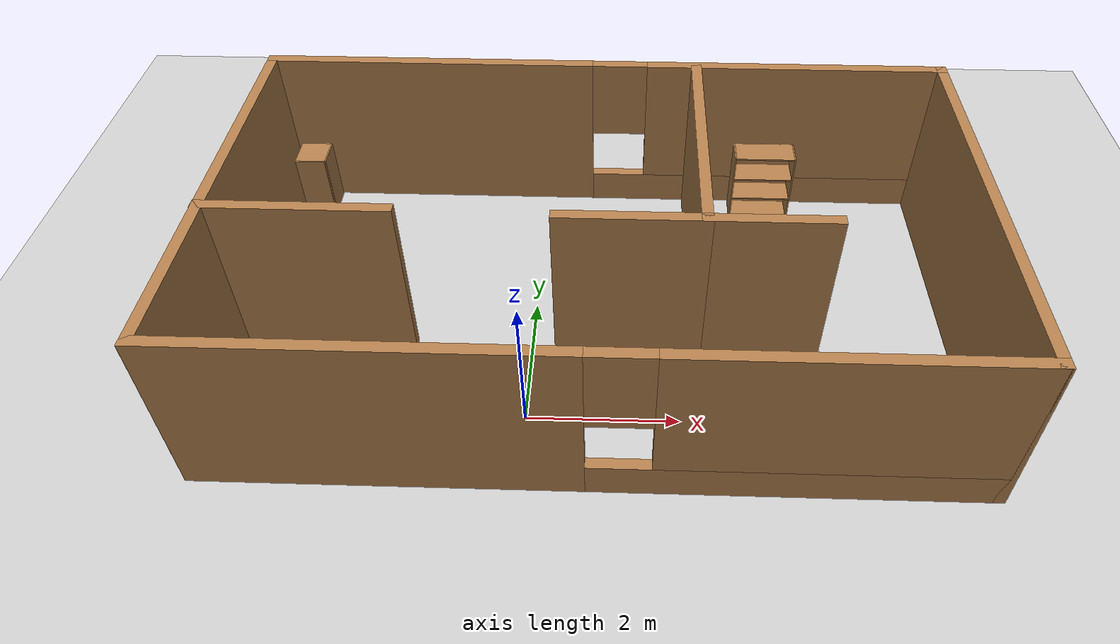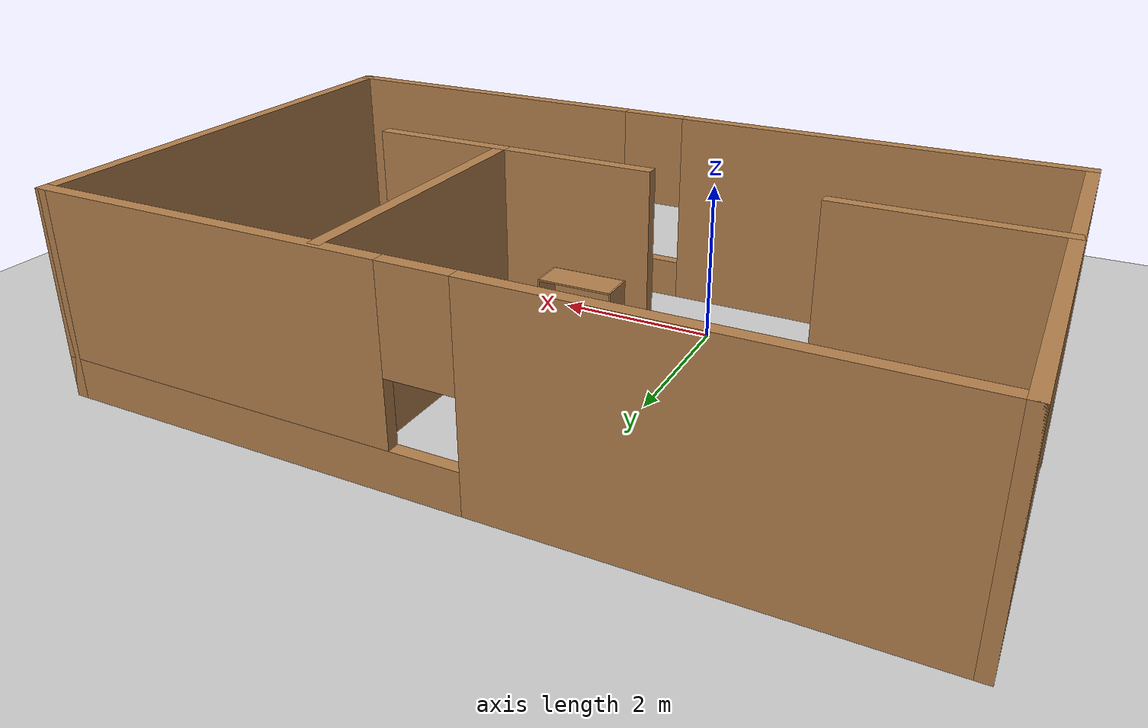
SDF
<sdf version="1.6">
 <world name="default">
  <light name="sun" type="directional">
   <pose>0 0 10 0 -0 0</pose>
   <diffuse>0.8 0.8 0.8 1</diffuse>
   <specular>0.2 0.2 0.2 1</specular>
   <attenuation>
    <range>1000</range>
    <constant>0.9</constant>
    <linear>0.01</linear>
    <quadratic>0.001</quadratic>
   </attenuation>
   <direction>-0.5 0.1 -0.9</direction>
  </light>
  <model name="ground_plane">
   <static>1</static>
   <link name="link">
    <collision name="collision">
     <geometry><plane><normal>0 0 1</normal><size>100 100</size></plane></geometry>
     <surface><friction><ode><mu>100</mu><mu2>50</mu2></ode></friction></surface>
    </collision>
    <visual name="visual">
     <cast_shadows>0</cast_shadows>
     <geometry><plane><normal>0 0 1</normal><size>100 100</size></plane></geometry>
     <material>
      <script><uri>file://media/materials/scripts/gazebo.material</uri><name>Gazebo/Grey</name></script>
     </material>
    </visual>
   </link>
  </model>
  <gravity>0 0 -9.8</gravity>
  <magnetic_field>6e-06 2.3e-05 -4.2e-05</magnetic_field>
  <atmosphere type="adiabatic"/>
  <physics name="default_physics" default="0" type="ode">
   <max_step_size>0.001</max_step_size>
   <real_time_factor>1</real_time_factor>
   <real_time_update_rate>1000</real_time_update_rate>
  </physics>
  <scene><ambient>0.4 0.4 0.4 1</ambient><background>0.7 0.7 0.7 1</background><shadows>1</shadows></scene>
  <spherical_coordinates>
   <surface_model>EARTH_WGS84</surface_model>
   <latitude_deg>0</latitude_deg>
   <longitude_deg>0</longitude_deg>
   <elevation>0</elevation>
   <heading_deg>0</heading_deg>
  </spherical_coordinates>
  <model name="my_room">
   <pose>0.891047 1.79 0 0 -0 0</pose>
   <link name="Wall_12">
    <collision name="Wall_12_Collision">
     <geometry><box><size>5.75 0.15 2.5</size></box></geometry>
     <pose>0 0 1.25 0 -0 0</pose>
    </collision>
    <visual name="Wall_12_Visual">
     <pose>0 0 1.25 0 -0 0</pose>
     <geometry><box><size>5.75 0.15 2.5</size></box></geometry>
     <material>
      <script><uri>file://media/materials/scripts/gazebo.material</uri><name>Gazebo/Wood</name></script>
      <ambient>1 1 1 1</ambient>
     </material>
     <meta><layer>0</layer></meta>
    </visual>
    <pose>-4.92105 0 0 0 -0 1.5708</pose>
   </link>
   <link name="Wall_13">
    <pose>0.003953 2.8 0 0 -0 0</pose>
    <visual name="Wall_13_Visual_0">
     <pose>-2.58645 0 1.25 0 -0 0</pose>
     <geometry><box><size>4.82709 0.15 2.5</size></box></geometry>
     <material>
      <script><uri>file://media/materials/scripts/gazebo.material</uri><name>Gazebo/Wood</name></script>
      <ambient>1 1 1 1</ambient>
     </material>
     <meta><layer>0</layer></meta>
    </visual>
    <collision name="Wall_13_Collision_0">
     <geometry><box><size>4.82709 0.15 2.5</size></box></geometry>
     <pose>-2.58645 0 1.25 0 -0 0</pose>
    </collision>
    <visual name="Wall_13_Visual_1">
     <pose>2.41355 0 0.25 0 -0 0</pose>
     <geometry><box><size>5.17291 0.15 0.5</size></box></geometry>
     <material>
      <script><uri>file://media/materials/scripts/gazebo.material</uri><name>Gazebo/Wood</name></script>
      <ambient>1 1 1 1</ambient>
     </material>
     <meta><layer>0</layer></meta>
    </visual>
    <collision name="Wall_13_Collision_1">
     <geometry><box><size>5.17291 0.15 0.5</size></box></geometry>
     <pose>2.41355 0 0.25 0 -0 0</pose>
    </collision>
    <visual name="Wall_13_Visual_2">
     <pose>2.81355 0 1.5 0 -0 0</pose>
     <geometry><box><size>4.37291 0.15 2</size></box></geometry>
     <material>
      <script><uri>file://media/materials/scripts/gazebo.material</uri><name>Gazebo/Wood</name></script>
      <ambient>1 1 1 1</ambient>
     </material>
     <meta><layer>0</layer></meta>
    </visual>
    <collision name="Wall_13_Collision_2">
     <geometry><box><size>4.37291 0.15 2</size></box></geometry>
     <pose>2.81355 0 1.5 0 -0 0</pose>
    </collision>
    <visual name="Wall_13_Visual_3">
     <pose>0.227094 0 1.9 0 -0 0</pose>
     <geometry><box><size>0.8 0.15 1.2</size></box></geometry>
     <material>
      <script><uri>file://media/materials/scripts/gazebo.material</uri><name>Gazebo/Wood</name></script>
      <ambient>1 1 1 1</ambient>
     </material>
     <meta><layer>0</layer></meta>
    </visual>
    <collision name="Wall_13_Collision_3">
     <geometry><box><size>0.8 0.15 1.2</size></box></geometry>
     <pose>0.227094 0 1.9 0 -0 0</pose>
    </collision>
   </link>
   <link name="Wall_16">
    <pose>0.003953 -2.8 0 0 -0 0</pose>
    <visual name="Wall_16_Visual_0">
     <pose>-2.53802 0 1.25 0 -0 0</pose>
     <geometry><box><size>4.92397 0.15 2.5</size></box></geometry>
     <material>
      <script><uri>file://media/materials/scripts/gazebo.material</uri><name>Gazebo/Wood</name></script>
      <ambient>1 1 1 1</ambient>
     </material>
     <meta><layer>0</layer></meta>
    </visual>
    <collision name="Wall_16_Collision_0">
     <geometry><box><size>4.92397 0.15 2.5</size></box></geometry>
     <pose>-2.53802 0 1.25 0 -0 0</pose>
    </collision>
    <visual name="Wall_16_Visual_1">
     <pose>2.46198 0 0.25 0 -0 0</pose>
     <geometry><box><size>5.07603 0.15 0.5</size></box></geometry>
     <material>
      <script><uri>file://media/materials/scripts/gazebo.material</uri><name>Gazebo/Wood</name></script>
      <ambient>1 1 1 1</ambient>
     </material>
     <meta><layer>0</layer></meta>
    </visual>
    <collision name="Wall_16_Collision_1">
     <geometry><box><size>5.07603 0.15 0.5</size></box></geometry>
     <pose>2.46198 0 0.25 0 -0 0</pose>
    </collision>
    <visual name="Wall_16_Visual_2">
     <pose>2.86198 0 1.5 0 -0 0</pose>
     <geometry><box><size>4.27603 0.15 2</size></box></geometry>
     <material>
      <script><uri>file://media/materials/scripts/gazebo.material</uri><name>Gazebo/Wood</name></script>
      <ambient>1 1 1 1</ambient>
     </material>
     <meta><layer>0</layer></meta>
    </visual>
    <collision name="Wall_16_Collision_2">
     <geometry><box><size>4.27603 0.15 2</size></box></geometry>
     <pose>2.86198 0 1.5 0 -0 0</pose>
    </collision>
    <visual name="Wall_16_Visual_3">
     <pose>0.32397 0 1.9 0 -0 0</pose>
     <geometry><box><size>0.8 0.15 1.2</size></box></geometry>
     <material>
      <script><uri>file://media/materials/scripts/gazebo.material</uri><name>Gazebo/Wood</name></script>
      <ambient>1 1 1 1</ambient>
     </material>
     <meta><layer>0</layer></meta>
    </visual>
    <collision name="Wall_16_Collision_3">
     <geometry><box><size>0.8 0.15 1.2</size></box></geometry>
     <pose>0.32397 0 1.9 0 -0 0</pose>
    </collision>
   </link>
   <link name="Wall_18">
    <collision name="Wall_18_Collision">
     <geometry><box><size>5.75 0.15 2.5</size></box></geometry>
     <pose>0 0 1.25 0 -0 0</pose>
    </collision>
    <visual name="Wall_18_Visual">
     <pose>0 0 1.25 0 -0 0</pose>
     <geometry><box><size>5.75 0.15 2.5</size></box></geometry>
     <material>
      <script><uri>file://media/materials/scripts/gazebo.material</uri><name>Gazebo/Wood</name></script>
      <ambient>1 1 1 1</ambient>
     </material>
     <meta><layer>0</layer></meta>
    </visual>
    <pose>4.92895 0 0 0 0 -1.5708</pose>
   </link>
   <link name="Wall_21">
    <collision name="Wall_21_Collision">
     <geometry><box><size>2.5 0.15 2.5</size></box></geometry>
     <pose>0 0 1.25 0 -0 0</pose>
    </collision>
    <visual name="Wall_21_Visual">
     <pose>0 0 1.25 0 -0 0</pose>
     <geometry><box><size>2.5 0.15 2.5</size></box></geometry>
     <material>
      <script><uri>file://media/materials/scripts/gazebo.material</uri><name>Gazebo/Wood</name></script>
      <ambient>1 1 1 1</ambient>
     </material>
     <meta><layer>0</layer></meta>
    </visual>
    <pose>-3.75395 -0.555343 0 0 -0 0</pose>
   </link>
   <link name="Wall_23">
    <collision name="Wall_23_Collision">
     <geometry><box><size>3.5 0.15 2.5</size></box></geometry>
     <pose>0 0 1.25 0 -0 0</pose>
    </collision>
    <visual name="Wall_23_Visual">
     <pose>0 0 1.25 0 -0 0</pose>
     <geometry><box><size>3.5 0.15 2.5</size></box></geometry>
     <material>
      <script><uri>file://media/materials/scripts/gazebo.material</uri><name>Gazebo/Wood</name></script>
      <ambient>1 1 1 1</ambient>
     </material>
     <meta><layer>0</layer></meta>
    </visual>
    <pose>1.35105 1.06966 0 0 0 -1.5708</pose>
   </link>
   <link name="Wall_24">
    <collision name="Wall_24_Collision">
     <geometry><box><size>2 0.15 2.5</size></box></geometry>
     <pose>0 0 1.25 0 -0 0</pose>
    </collision>
    <visual name="Wall_24_Visual">
     <pose>0 0 1.25 0 -0 0</pose>
     <geometry><box><size>2 0.15 2.5</size></box></geometry>
     <material>
      <script><uri>file://media/materials/scripts/gazebo.material</uri><name>Gazebo/Wood</name></script>
      <ambient>1 1 1 1</ambient>
     </material>
     <meta><layer>0</layer></meta>
    </visual>
    <pose>0.426047 -0.605343 0 0 -0 3.14159</pose>
   </link>
   <link name="Wall_26">
    <collision name="Wall_26_Collision">
     <geometry><box><size>1.75 0.15 2.5</size></box></geometry>
     <pose>0 0 1.25 0 -0 0</pose>
    </collision>
    <visual name="Wall_26_Visual">
     <pose>0 0 1.25 0 -0 0</pose>
     <geometry><box><size>1.75 0.15 2.5</size></box></geometry>
     <material>
      <script><uri>file://media/materials/scripts/gazebo.material</uri><name>Gazebo/Wood</name></script>
      <ambient>1 1 1 1</ambient>
     </material>
     <meta><layer>0</layer></meta>
    </visual>
    <pose>2.15105 -0.605343 0 0 -0 0</pose>
   </link>
   <static>1</static>
  </model>
  <model name="cabinet">
   <static>1</static>
   <link name="cabinet_bottom_plate">
    <inertial>
     <pose>0 0 -1 0 -0 0</pose>
     <inertia><ixx>2.05</ixx><ixy>0</ixy><ixz>0</ixz><iyy>2.05</iyy><iyz>0</iyz><izz>2.05</izz></inertia>
     <mass>25</mass>
    </inertial>
    <collision name="cabinet_bottom_plate_geom">
     <pose>0 0 0.01 0 -0 0</pose>
     <geometry><box><size>0.45 0.45 0.02</size></box></geometry>
    </collision>
    <visual name="cabinet_bottom_plate_geom_visual">
     <pose>0 0 0.01 0 -0 0</pose>
     <geometry><box><size>0.45 0.45 0.02</size></box></geometry>
     <material>
      <script><uri>file://media/materials/scripts/gazebo.material</uri><name>Gazebo/Wood</name></script>
     </material>
    </visual>
    <collision name="cabinet_bottom_plate_geom_cabinet_back_plate">
     <pose>0.235 0 0.51 0 -0 0</pose>
     <geometry><box><size>0.02 0.45 1.02</size></box></geometry>
    </collision>
    <visual name="cabinet_bottom_plate_geom_cabinet_back_plate_visual">
     <pose>0.235 0 0.51 0 -0 0</pose>
     <geometry><box><size>0.02 0.45 1.02</size></box></geometry>
     <material>
      <script><uri>file://media/materials/scripts/gazebo.material</uri><name>Gazebo/Wood</name></script>
     </material>
    </visual>
    <collision name="cabinet_bottom_plate_geom_cabinet_left_plate">
     <pose>0 0.235 0.51 0 -0 0</pose>
     <geometry><box><size>0.45 0.02 1.02</size></box></geometry>
    </collision>
    <visual name="cabinet_bottom_plate_geom_cabinet_left_plate_visual">
     <pose>0 0.235 0.51 0 -0 0</pose>
     <geometry><box><size>0.45 0.02 1.02</size></box></geometry>
     <material>
      <script><uri>file://media/materials/scripts/gazebo.material</uri><name>Gazebo/Wood</name></script>
     </material>
    </visual>
    <collision name="cabinet_bottom_plate_geom_cabinet_middle_plate">
     <pose>0 0 0.51 0 -0 0</pose>
     <geometry><box><size>0.45 0.45 0.02</size></box></geometry>
    </collision>
    <visual name="cabinet_bottom_plate_geom_cabinet_middle_plate_visual">
     <pose>0 0 0.51 0 -0 0</pose>
     <geometry><box><size>0.45 0.45 0.02</size></box></geometry>
     <material>
      <script><uri>file://media/materials/scripts/gazebo.material</uri><name>Gazebo/Wood</name></script>
     </material>
    </visual>
    <collision name="cabinet_bottom_plate_geom_cabinet_right_plate">
     <pose>0 -0.235 0.51 0 -0 0</pose>
     <geometry><box><size>0.45 0.02 1.02</size></box></geometry>
    </collision>
    <visual name="cabinet_bottom_plate_geom_cabinet_right_plate_visual">
     <pose>0 -0.235 0.51 0 -0 0</pose>
     <geometry><box><size>0.45 0.02 1.02</size></box></geometry>
     <material>
      <script><uri>file://media/materials/scripts/gazebo.material</uri><name>Gazebo/Wood</name></script>
     </material>
    </visual>
    <collision name="cabinet_bottom_plate_geom_cabinet_top_plate">
     <pose>0 0 1.01 0 -0 0</pose>
     <geometry><box><size>0.45 0.45 0.02</size></box></geometry>
    </collision>
    <visual name="cabinet_bottom_plate_geom_cabinet_top_plate_visual">
     <pose>0 0 1.01 0 -0 0</pose>
     <geometry><box><size>0.45 0.45 0.02</size></box></geometry>
     <material>
      <script><uri>file://media/materials/scripts/gazebo.material</uri><name>Gazebo/Wood</name></script>
     </material>
    </visual>
   </link>
   <pose>-3.65155 4.25781 0 0 -0 0</pose>
  </model>
  <model name="bookshelf">
   <static>1</static>
   <link name="link">
    <inertial><mass>1</mass></inertial>
    <collision name="back">
     <pose>0 0.005 0.6 0 -0 0</pose>
     <geometry><box><size>0.9 0.01 1.2</size></box></geometry>
    </collision>
    <visual name="visual1">
     <pose>0 0.005 0.6 0 -0 0</pose>
     <geometry><box><size>0.9 0.01 1.2</size></box></geometry>
     <material>
      <script><uri>file://media/materials/scripts/gazebo.material</uri><name>Gazebo/Wood</name></script>
     </material>
    </visual>
    <collision name="left_side">
     <pose>0.45 -0.195 0.6 0 -0 0</pose>
     <geometry><box><size>0.02 0.4 1.2</size></box></geometry>
    </collision>
    <visual name="visual2">
     <pose>0.45 -0.195 0.6 0 -0 0</pose>
     <geometry><box><size>0.02 0.4 1.2</size></box></geometry>
     <material>
      <script><uri>file://media/materials/scripts/gazebo.material</uri><name>Gazebo/Wood</name></script>
     </material>
    </visual>
    <collision name="right_side">
     <pose>-0.45 -0.195 0.6 0 -0 0</pose>
     <geometry><box><size>0.02 0.4 1.2</size></box></geometry>
    </collision>
    <visual name="visual3">
     <pose>-0.45 -0.195 0.6 0 -0 0</pose>
     <geometry><box><size>0.02 0.4 1.2</size></box></geometry>
     <material>
      <script><uri>file://media/materials/scripts/gazebo.material</uri><name>Gazebo/Wood</name></script>
     </material>
    </visual>
    <collision name="bottom">
     <pose>0 -0.195 0.03 0 -0 0</pose>
     <geometry><box><size>0.88 0.4 0.06</size></box></geometry>
    </collision>
    <visual name="visual4">
     <pose>0 -0.195 0.03 0 -0 0</pose>
     <geometry><box><size>0.88 0.4 0.06</size></box></geometry>
     <material>
      <script><uri>file://media/materials/scripts/gazebo.material</uri><name>Gazebo/Wood</name></script>
     </material>
    </visual>
    <collision name="top">
     <pose>0 -0.195 1.19 0 -0 0</pose>
     <geometry><box><size>0.88 0.4 0.02</size></box></geometry>
    </collision>
    <visual name="visual5">
     <pose>0 -0.195 1.19 0 -0 0</pose>
     <geometry><box><size>0.88 0.4 0.02</size></box></geometry>
     <material>
      <script><uri>file://media/materials/scripts/gazebo.material</uri><name>Gazebo/Wood</name></script>
     </material>
    </visual>
    <collision name="low_shelf">
     <pose>0 -0.195 0.43 0 -0 0</pose>
     <geometry><box><size>0.88 0.4 0.02</size></box></geometry>
    </collision>
    <visual name="visual6">
     <pose>0 -0.195 0.43 0 -0 0</pose>
     <geometry><box><size>0.88 0.4 0.02</size></box></geometry>
     <material>
      <script><uri>file://media/materials/scripts/gazebo.material</uri><name>Gazebo/Wood</name></script>
     </material>
    </visual>
    <collision name="high_shelf">
     <pose>0 -0.195 0.8 0 -0 0</pose>
     <geometry><box><size>0.88 0.4 0.02</size></box></geometry>
    </collision>
    <visual name="visual7">
     <pose>0 -0.195 0.8 0 -0 0</pose>
     <geometry><box><size>0.88 0.4 0.02</size></box></geometry>
     <material>
      <script><uri>file://media/materials/scripts/gazebo.material</uri><name>Gazebo/Wood</name></script>
     </material>
    </visual>
   </link>
   <pose>3.36784 4.44924 0 0 -0 0</pose>
  </model>
  <model name="bookshelf_0">
   <static>1</static>
   <link name="link">
    <inertial><mass>1</mass></inertial>
    <collision name="back">
     <pose>0 0.005 0.6 0 -0 0</pose>
     <geometry><box><size>0.9 0.01 1.2</size></box></geometry>
    </collision>
    <visual name="visual1">
     <pose>0 0.005 0.6 0 -0 0</pose>
     <geometry><box><size>0.9 0.01 1.2</size></box></geometry>
     <material>
      <script><uri>file://media/materials/scripts/gazebo.material</uri><name>Gazebo/Wood</name></script>
     </material>
    </visual>
    <collision name="left_side">
     <pose>0.45 -0.195 0.6 0 -0 0</pose>
     <geometry><box><size>0.02 0.4 1.2</size></box></geometry>
    </collision>
    <visual name="visual2">
     <pose>0.45 -0.195 0.6 0 -0 0</pose>
     <geometry><box><size>0.02 0.4 1.2</size></box></geometry>
     <material>
      <script><uri>file://media/materials/scripts/gazebo.material</uri><name>Gazebo/Wood</name></script>
     </material>
    </visual>
    <collision name="right_side">
     <pose>-0.45 -0.195 0.6 0 -0 0</pose>
     <geometry><box><size>0.02 0.4 1.2</size></box></geometry>
    </collision>
    <visual name="visual3">
     <pose>-0.45 -0.195 0.6 0 -0 0</pose>
     <geometry><box><size>0.02 0.4 1.2</size></box></geometry>
     <material>
      <script><uri>file://media/materials/scripts/gazebo.material</uri><name>Gazebo/Wood</name></script>
     </material>
    </visual>
    <collision name="bottom">
     <pose>0 -0.195 0.03 0 -0 0</pose>
     <geometry><box><size>0.88 0.4 0.06</size></box></geometry>
    </collision>
    <visual name="visual4">
     <pose>0 -0.195 0.03 0 -0 0</pose>
     <geometry><box><size>0.88 0.4 0.06</size></box></geometry>
     <material>
      <script><uri>file://media/materials/scripts/gazebo.material</uri><name>Gazebo/Wood</name></script>
     </material>
    </visual>
    <collision name="top">
     <pose>0 -0.195 1.19 0 -0 0</pose>
     <geometry><box><size>0.88 0.4 0.02</size></box></geometry>
    </collision>
    <visual name="visual5">
     <pose>0 -0.195 1.19 0 -0 0</pose>
     <geometry><box><size>0.88 0.4 0.02</size></box></geometry>
     <material>
      <script><uri>file://media/materials/scripts/gazebo.material</uri><name>Gazebo/Wood</name></script>
     </material>
    </visual>
    <collision name="low_shelf">
     <pose>0 -0.195 0.43 0 -0 0</pose>
     <geometry><box><size>0.88 0.4 0.02</size></box></geometry>
    </collision>
    <visual name="visual6">
     <pose>0 -0.195 0.43 0 -0 0</pose>
     <geometry><box><size>0.88 0.4 0.02</size></box></geometry>
     <material>
      <script><uri>file://media/materials/scripts/gazebo.material</uri><name>Gazebo/Wood</name></script>
     </material>
    </visual>
    <collision name="high_shelf">
     <pose>0 -0.195 0.8 0 -0 0</pose>
     <geometry><box><size>0.88 0.4 0.02</size></box></geometry>
    </collision>
    <visual name="visual7">
     <pose>0 -0.195 0.8 0 -0 0</pose>
     <geometry><box><size>0.88 0.4 0.02</size></box></geometry>
     <material>
      <script><uri>file://media/materials/scripts/gazebo.material</uri><name>Gazebo/Wood</name></script>
     </material>
    </visual>
   </link>
   <pose>0.997495 1.39266 0 0 0 -3.13319</pose>
  </model>
 </world>
</sdf>
